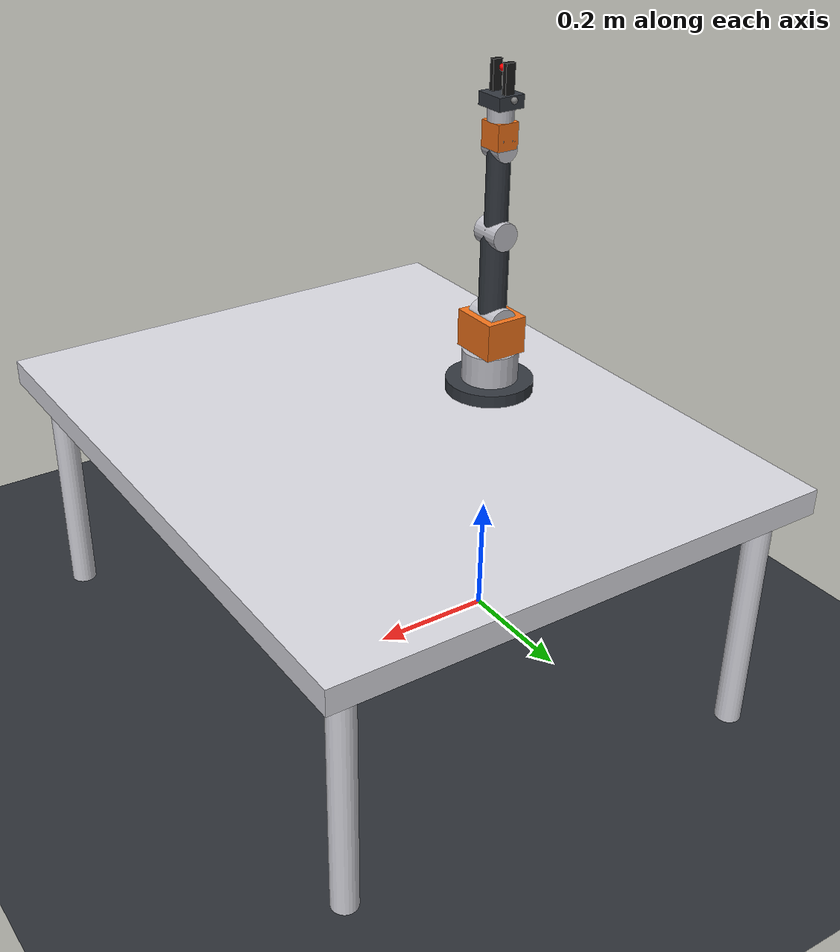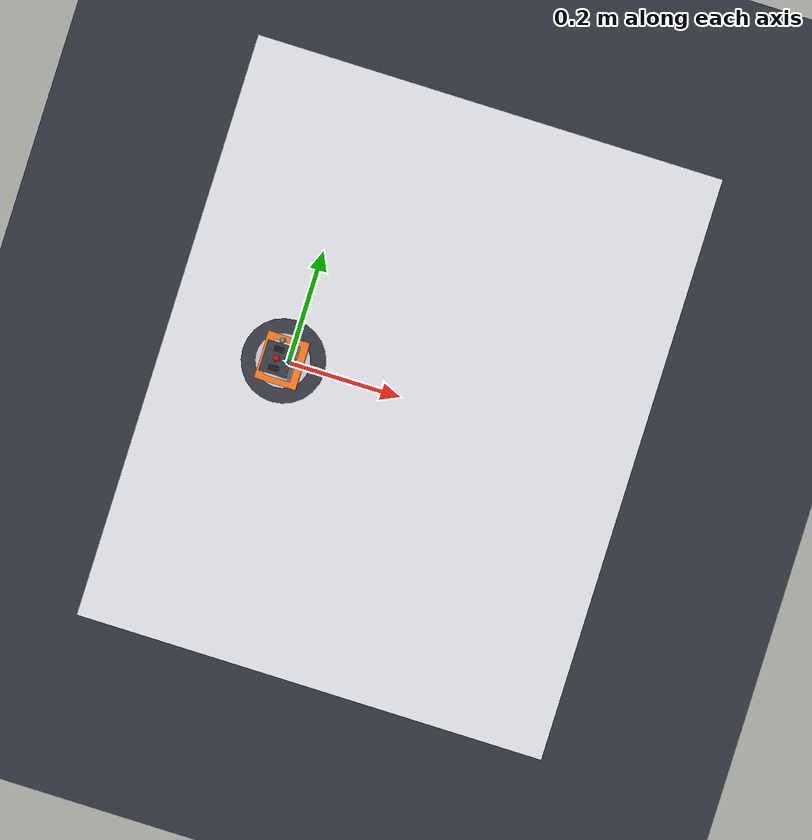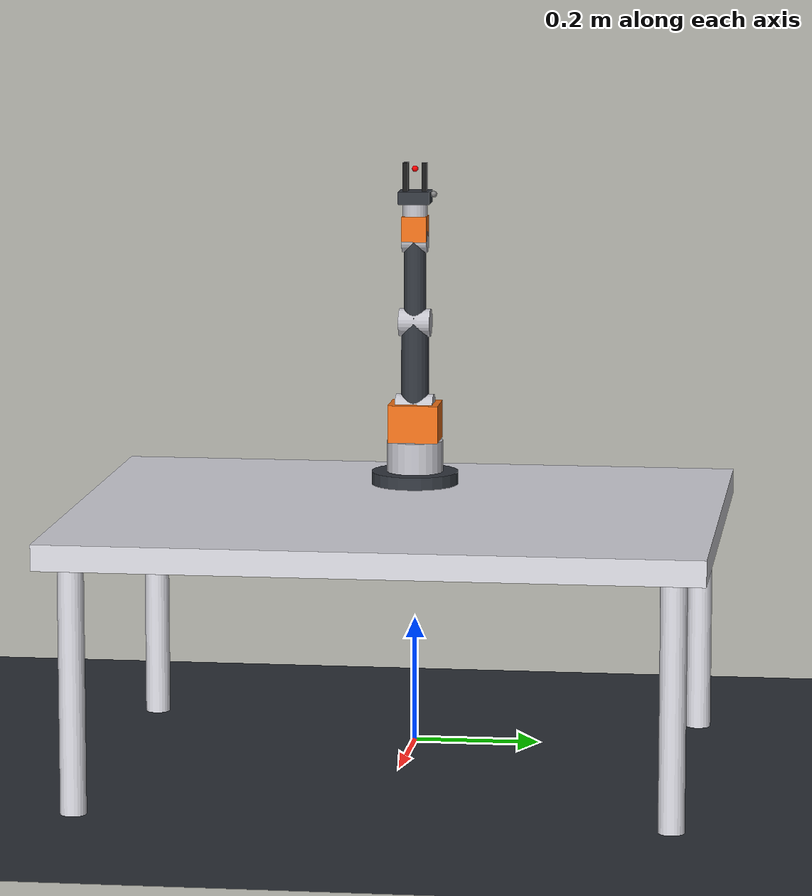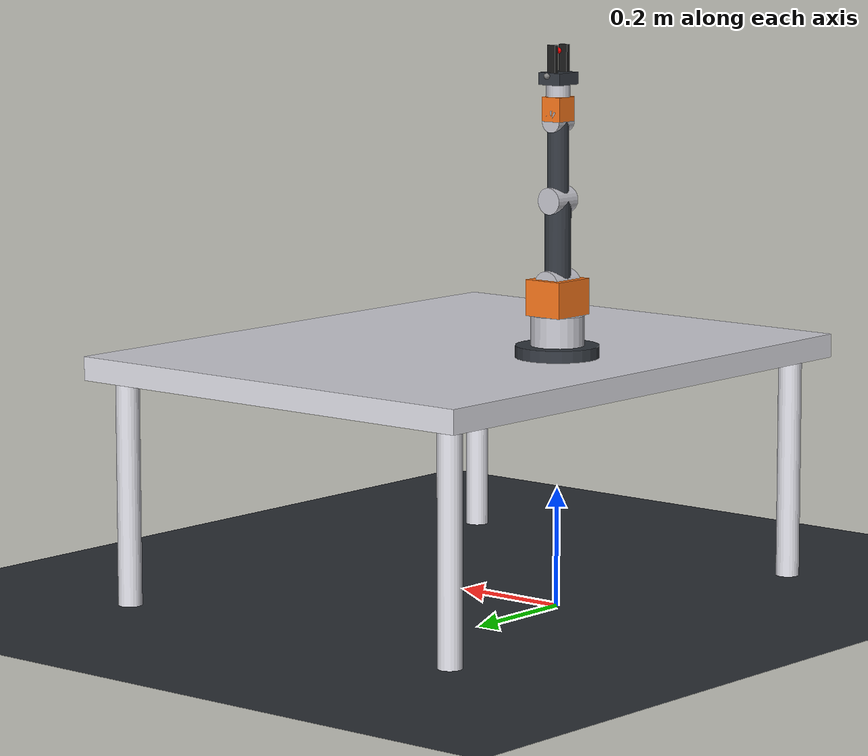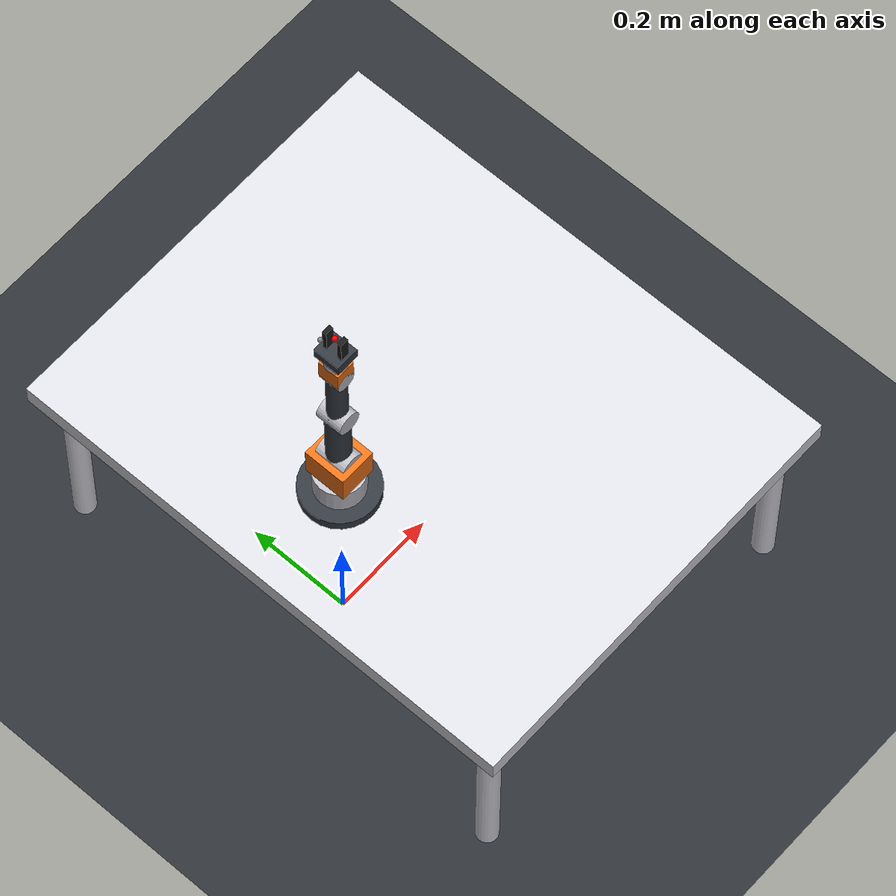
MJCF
<mujoco model="twinguard_scene_single">
  <compiler angle="degree" coordinate="local"/>

  <option timestep="0.002" gravity="0 0 -9.81" integrator="RK4"/>

  <visual>
    <headlight ambient="0.4 0.4 0.4" diffuse="0.8 0.8 0.8" specular="0.2 0.2 0.2"/>
    <global offwidth="1280" offheight="720"/>
  </visual>

  <asset>
    <texture type="skybox" builtin="gradient" rgb1="0.3 0.5 0.7" rgb2="0.05 0.05 0.1" width="512" height="512"/>
    <texture name="grid_floor" type="2d" builtin="checker" rgb1="0.2 0.22 0.25" rgb2="0.15 0.16 0.18" width="512" height="512" mark="edge" markrgb="0.8 0.8 0.8"/>
    <material name="floor_mat" texture="grid_floor" texrepeat="20 20" reflectance="0.1"/>
    <material name="table_mat" rgba="0.85 0.85 0.88 1.0" roughness="0.3" reflectance="0.05"/>
    <material name="target_mat" rgba="0.2 0.7 0.9 1.0" roughness="0.2"/>
  </asset>

  <worldbody>
    <!-- Ground plane -->
    <geom name="ground" type="plane" size="5 5 0.1" material="floor_mat"/>

    <!-- Key Lighting -->
    <light directional="true" pos="0.5 0.5 2.0" dir="-0.5 -0.5 -1.0" diffuse="0.9 0.9 0.9" specular="0.3 0.3 0.3"/>
    <light directional="true" pos="-0.5 -0.5 2.0" dir="0.5 0.5 -1.0" diffuse="0.4 0.4 0.4"/>

    <!-- Work Table -->
    <body name="table" pos="0.2 0 0.4">
      <geom name="table_top" type="box" size="0.4 0.5 0.02" material="table_mat"/>
      <geom name="table_leg_1" type="cylinder" size="0.02 0.2" pos="0.35 0.45 -0.2" material="table_mat"/>
      <geom name="table_leg_2" type="cylinder" size="0.02 0.2" pos="-0.35 0.45 -0.2" material="table_mat"/>
      <geom name="table_leg_3" type="cylinder" size="0.02 0.2" pos="0.35 -0.45 -0.2" material="table_mat"/>
      <geom name="table_leg_4" type="cylinder" size="0.02 0.2" pos="-0.35 -0.45 -0.2" material="table_mat"/>
    </body>

    <!-- Fixed Cameras -->
    <camera name="overview_cam" pos="0.8 -0.8 1.1" xyaxes="0.707 0.707 0 -0.4 0.4 0.82"/>
    <camera name="front_cam" pos="0.7 0 0.8" xyaxes="0 1 0 -0.5 0 0.86"/>
  </worldbody>

  <include file="so101.xml"/>
</mujoco>

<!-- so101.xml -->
<mujoco model="so101">
  <compiler angle="degree" coordinate="local"/>

  <default>
    <joint damping="0.5" armature="0.01" frictionloss="0.1"/>
    <geom friction="1.0 0.005 0.0001" solref="0.01 1" solimp="0.9 0.95 0.001"/>
    <position kp="40" kv="5"/>
  </default>

  <asset>
    <material name="arm_dark" rgba="0.2 0.22 0.25 1.0" roughness="0.6"/>
    <material name="arm_accent" rgba="0.95 0.45 0.1 1.0" roughness="0.4"/>
    <material name="gripper_mat" rgba="0.1 0.1 0.1 1.0" roughness="0.5"/>
    <material name="joint_metal" rgba="0.75 0.75 0.78 1.0" metallic="0.8" roughness="0.3"/>
  </asset>

  <worldbody>
    <!-- SO-101 Arm Mount (mounted at z = 0.42 on table) -->
    <body name="so101_base" pos="0 0 0.42">
      <geom name="base_plate" type="cylinder" size="0.07 0.01" pos="0 0 0.01" material="arm_dark"/>
      <geom name="base_turret" type="cylinder" size="0.045 0.025" pos="0 0 0.045" material="joint_metal"/>

      <!-- Joint 1: Base Yaw (Pan) -->
      <body name="link_1_yaw" pos="0 0 0.07">
        <joint name="joint_base_yaw" type="hinge" axis="0 0 1" range="-150 150"/>
        <geom name="link_1_visual" type="box" size="0.035 0.04 0.03" pos="0 0 0.03" material="arm_accent"/>

        <!-- Joint 2: Shoulder Pitch -->
        <body name="link_2_shoulder" pos="0 0 0.05">
          <joint name="joint_shoulder_pitch" type="hinge" axis="0 1 0" range="-110 110"/>
          <geom name="shoulder_joint_hub" type="cylinder" size="0.025 0.03" quat="0.7071 0.7071 0 0" material="joint_metal"/>
          <geom name="upper_arm_link" type="capsule" fromto="0 0 0 0 0 0.14" size="0.022" material="arm_dark"/>

          <!-- Joint 3: Elbow Pitch -->
          <body name="link_3_elbow" pos="0 0 0.14">
            <joint name="joint_elbow_pitch" type="hinge" axis="0 1 0" range="-120 120"/>
            <geom name="elbow_joint_hub" type="cylinder" size="0.022 0.025" quat="0.7071 0.7071 0 0" material="joint_metal"/>
            <geom name="forearm_link" type="capsule" fromto="0 0 0 0 0 0.13" size="0.018" material="arm_dark"/>

            <!-- Joint 4: Wrist Pitch -->
            <body name="link_4_wrist_pitch" pos="0 0 0.13">
              <joint name="joint_wrist_pitch" type="hinge" axis="0 1 0" range="-110 110"/>
              <geom name="wrist_pitch_hub" type="cylinder" size="0.018 0.02" quat="0.7071 0.7071 0 0" material="joint_metal"/>
              <geom name="wrist_pitch_body" type="box" size="0.018 0.02 0.02" pos="0 0 0.02" material="arm_accent"/>

              <!-- Joint 5: Wrist Roll -->
              <body name="link_5_wrist_roll" pos="0 0 0.04">
                <joint name="joint_wrist_roll" type="hinge" axis="0 0 1" range="-180 180"/>
                <geom name="wrist_roll_flange" type="cylinder" size="0.02 0.012" pos="0 0 0.012" material="joint_metal"/>
                <geom name="gripper_mount" type="box" size="0.022 0.025 0.01" pos="0 0 0.03" material="arm_dark"/>

                <!-- End Effector Site / Camera -->
                <site name="wrist_cam_site" pos="0 0.03 0.035" quat="0.7071 0.7071 0 0"/>
                <site name="gripper_site" pos="0 0 0.075" size="0.005" rgba="1 0 0 1"/>

                <!-- Joint 6: Gripper Jaw (Main finger) -->
                <body name="gripper_finger_left" pos="0 0.015 0.035">
                  <joint name="joint_gripper" type="hinge" axis="1 0 0" range="0 40"/>
                  <geom name="finger_left_geom" type="box" size="0.008 0.004 0.025" pos="0 0 0.025" material="gripper_mat"/>
                </body>

                <!-- Gripper Finger Right -->
                <body name="gripper_finger_right" pos="0 -0.015 0.035">
                  <geom name="finger_right_geom" type="box" size="0.008 0.004 0.025" pos="0 0 0.025" material="gripper_mat"/>
                </body>
              </body>
            </body>
          </body>
        </body>
      </body>
    </body>
  </worldbody>

  <actuator>
    <position name="actuator_base_yaw" joint="joint_base_yaw" ctrlrange="-150 150"/>
    <position name="actuator_shoulder_pitch" joint="joint_shoulder_pitch" ctrlrange="-110 110"/>
    <position name="actuator_elbow_pitch" joint="joint_elbow_pitch" ctrlrange="-120 120"/>
    <position name="actuator_wrist_pitch" joint="joint_wrist_pitch" ctrlrange="-110 110"/>
    <position name="actuator_wrist_roll" joint="joint_wrist_roll" ctrlrange="-180 180"/>
    <position name="actuator_gripper" joint="joint_gripper" ctrlrange="0 40"/>
  </actuator>
</mujoco>
